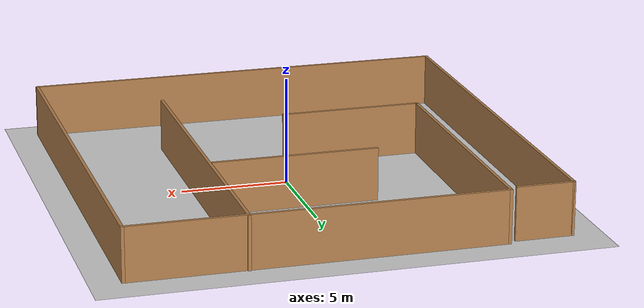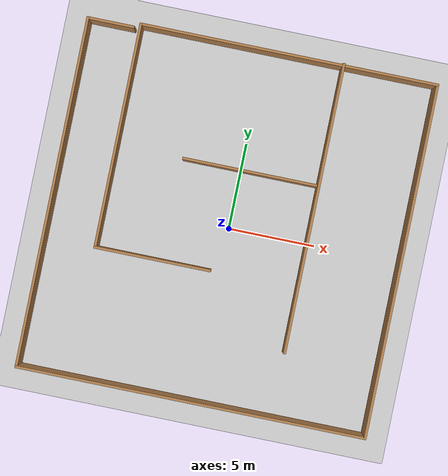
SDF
<sdf version="1.6">
 <world name="default">
  <light name="sun" type="directional">
   <pose>0 0 10 0 -0 0</pose>
   <diffuse>0.8 0.8 0.8 1</diffuse>
   <specular>0.2 0.2 0.2 1</specular>
   <attenuation>
    <range>1000</range>
    <constant>0.9</constant>
    <linear>0.01</linear>
    <quadratic>0.001</quadratic>
   </attenuation>
   <direction>-0.5 0.1 -0.9</direction>
  </light>
  <model name="ground_plane">
   <static>1</static>
   <link name="link">
    <collision name="collision">
     <geometry><plane><normal>0 0 1</normal><size>100 100</size></plane></geometry>
     <surface>
      <contact><collide_bitmask>65535</collide_bitmask></contact>
      <friction><ode><mu>100</mu><mu2>50</mu2></ode></friction>
     </surface>
    </collision>
    <visual name="visual">
     <cast_shadows>0</cast_shadows>
     <geometry><plane><normal>0 0 1</normal><size>100 100</size></plane></geometry>
     <material>
      <script><uri>file://media/materials/scripts/gazebo.material</uri><name>Gazebo/Grey</name></script>
     </material>
    </visual>
   </link>
  </model>
  <gravity>0 0 -9.8</gravity>
  <magnetic_field>6e-06 2.3e-05 -4.2e-05</magnetic_field>
  <atmosphere type="adiabatic"/>
  <physics name="default_physics" default="0" type="ode">
   <max_step_size>0.001</max_step_size>
   <real_time_factor>1</real_time_factor>
   <real_time_update_rate>1000</real_time_update_rate>
  </physics>
  <scene><ambient>0.4 0.4 0.4 1</ambient><background>0.7 0.7 0.7 1</background><shadows>1</shadows></scene>
  <audio><device>default</device></audio>
  <spherical_coordinates>
   <surface_model>EARTH_WGS84</surface_model>
   <latitude_deg>0</latitude_deg>
   <longitude_deg>0</longitude_deg>
   <elevation>0</elevation>
   <heading_deg>0</heading_deg>
  </spherical_coordinates>
  <model name="room">
   <pose>-0.15 0.190679 0 0 -0 0</pose>
   <link name="Wall_0">
    <collision name="Wall_0_Collision">
     <geometry><box><size>6.75 0.15 2.5</size></box></geometry>
     <pose>0 0 1.25 0 -0 0</pose>
    </collision>
    <visual name="Wall_0_Visual">
     <pose>0 0 1.25 0 -0 0</pose>
     <geometry><box><size>6.75 0.15 2.5</size></box></geometry>
     <material>
      <script><uri>file://media/materials/scripts/gazebo.material</uri><name>Gazebo/Wood</name></script>
      <ambient>1 1 1 1</ambient>
     </material>
     <meta><layer>0</layer></meta>
    </visual>
    <pose>-3.75 -2.71068 0 0 -0 3.14159</pose>
   </link>
   <link name="Wall_1">
    <collision name="Wall_1_Collision">
     <geometry><box><size>13 0.15 2.5</size></box></geometry>
     <pose>0 0 1.25 0 -0 0</pose>
    </collision>
    <visual name="Wall_1_Visual">
     <pose>0 0 1.25 0 -0 0</pose>
     <geometry><box><size>13 0.15 2.5</size></box></geometry>
     <material>
      <script><uri>file://media/materials/scripts/gazebo.material</uri><name>Gazebo/Wood</name></script>
      <ambient>1 1 1 1</ambient>
     </material>
     <meta><layer>0</layer></meta>
    </visual>
    <pose>-7.05 3.71432 0 0 -0 1.5708</pose>
   </link>
   <link name="Wall_10">
    <collision name="Wall_10_Collision">
     <geometry><box><size>7.75 0.15 2.5</size></box></geometry>
     <pose>0 0 1.25 0 -0 0</pose>
    </collision>
    <visual name="Wall_10_Visual">
     <pose>0 0 1.25 0 -0 0</pose>
     <geometry><box><size>7.75 0.15 2.5</size></box></geometry>
     <material>
      <script><uri>file://media/materials/scripts/gazebo.material</uri><name>Gazebo/Wood</name></script>
      <ambient>1 1 1 1</ambient>
     </material>
     <meta><layer>0</layer></meta>
    </visual>
    <pose>0.653307 3.20573 0 0 -0 0</pose>
   </link>
   <link name="Wall_12">
    <collision name="Wall_12_Collision">
     <geometry><box><size>16.75 0.15 2.5</size></box></geometry>
     <pose>0 0 1.25 0 -0 0</pose>
    </collision>
    <visual name="Wall_12_Visual">
     <pose>0 0 1.25 0 -0 0</pose>
     <geometry><box><size>16.75 0.15 2.5</size></box></geometry>
     <material>
      <script><uri>file://media/materials/scripts/gazebo.material</uri><name>Gazebo/Wood</name></script>
      <ambient>1 1 1 1</ambient>
     </material>
     <meta><layer>0</layer></meta>
    </visual>
    <pose>4.63658 1.91068 0 0 -0 -1.5708</pose>
   </link>
   <link name="Wall_2">
    <collision name="Wall_2_Collision">
     <geometry><box><size>17.25 0.15 2.5</size></box></geometry>
     <pose>0 0 1.25 0 -0 0</pose>
    </collision>
    <visual name="Wall_2_Visual">
     <pose>0 0 1.25 0 -0 0</pose>
     <geometry><box><size>17.25 0.15 2.5</size></box></geometry>
     <material>
      <script><uri>file://media/materials/scripts/gazebo.material</uri><name>Gazebo/Wood</name></script>
      <ambient>1 1 1 1</ambient>
     </material>
     <meta><layer>0</layer></meta>
    </visual>
    <pose>1.5 10.1393 0 0 -0 0</pose>
   </link>
   <link name="Wall_3">
    <collision name="Wall_3_Collision">
     <geometry><box><size>20.5 0.15 2.5</size></box></geometry>
     <pose>0 0 1.25 0 -0 0</pose>
    </collision>
    <visual name="Wall_3_Visual">
     <pose>0 0 1.25 0 -0 0</pose>
     <geometry><box><size>20.5 0.15 2.5</size></box></geometry>
     <material>
      <script><uri>file://media/materials/scripts/gazebo.material</uri><name>Gazebo/Wood</name></script>
      <ambient>1 1 1 1</ambient>
     </material>
     <meta><layer>0</layer></meta>
    </visual>
    <pose>10.05 -0.035679 0 0 -0 -1.5708</pose>
   </link>
   <link name="Wall_4">
    <collision name="Wall_4_Collision">
     <geometry><box><size>20.25 0.15 2.5</size></box></geometry>
     <pose>0 0 1.25 0 -0 0</pose>
    </collision>
    <visual name="Wall_4_Visual">
     <pose>0 0 1.25 0 -0 0</pose>
     <geometry><box><size>20.25 0.15 2.5</size></box></geometry>
     <material>
      <script><uri>file://media/materials/scripts/gazebo.material</uri><name>Gazebo/Wood</name></script>
      <ambient>1 1 1 1</ambient>
     </material>
     <meta><layer>0</layer></meta>
    </visual>
    <pose>0 -10.2107 0 0 -0 3.14159</pose>
   </link>
   <link name="Wall_5">
    <collision name="Wall_5_Collision">
     <geometry><box><size>20.25 0.15 2.5</size></box></geometry>
     <pose>0 0 1.25 0 -0 0</pose>
    </collision>
    <visual name="Wall_5_Visual">
     <pose>0 0 1.25 0 -0 0</pose>
     <geometry><box><size>20.25 0.15 2.5</size></box></geometry>
     <material>
      <script><uri>file://media/materials/scripts/gazebo.material</uri><name>Gazebo/Wood</name></script>
      <ambient>1 1 1 1</ambient>
     </material>
     <meta><layer>0</layer></meta>
    </visual>
    <pose>-10.05 -0.160679 0 0 -0 1.5708</pose>
   </link>
   <link name="Wall_6">
    <collision name="Wall_6_Collision">
     <geometry><box><size>2.75 0.15 2.5</size></box></geometry>
     <pose>0 0 1.25 0 -0 0</pose>
    </collision>
    <visual name="Wall_6_Visual">
     <pose>0 0 1.25 0 -0 0</pose>
     <geometry><box><size>2.75 0.15 2.5</size></box></geometry>
     <material>
      <script><uri>file://media/materials/scripts/gazebo.material</uri><name>Gazebo/Wood</name></script>
      <ambient>1 1 1 1</ambient>
     </material>
     <meta><layer>0</layer></meta>
    </visual>
    <pose>-8.75 9.88932 0 0 -0 0</pose>
   </link>
   <static>1</static>
  </model>
 </world>
</sdf>
